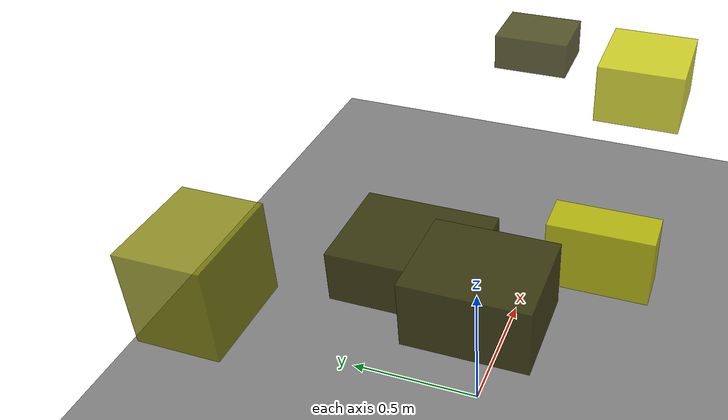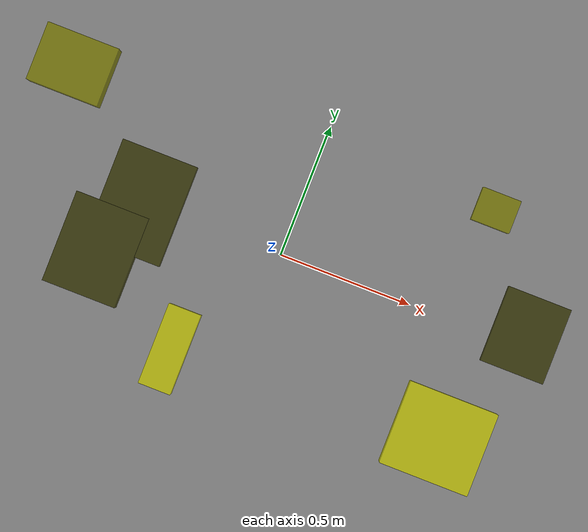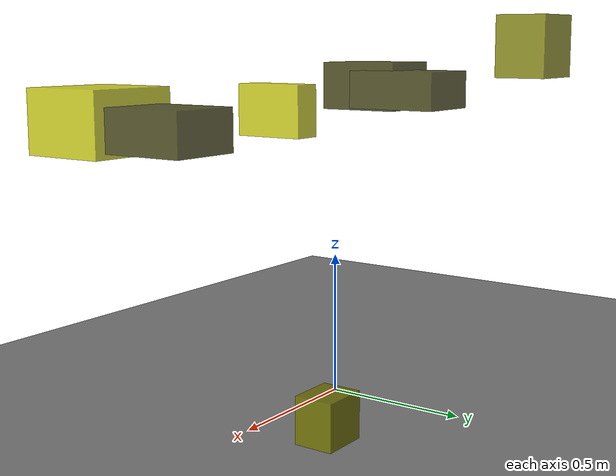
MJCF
<?xml version="1.0"?>
<mujoco model="obstacle_scene">
  <compiler angle="radian" coordinate="local"/>
  <option timestep="0.001" gravity="0 0 -9.81"/>

  <asset>
    <material name="obstacle_mat" rgba="0.8 0.8 0.0 0.8"/>
    <material name="ground_mat" rgba="0.5 0.5 0.5 1"/>
  </asset>

  <worldbody>
    <!-- Ground plane -->
    <geom name="ground" type="plane" size="3 3 0.1" material="ground_mat"/>

    <!-- Obstacles -->
    <body name="obstacle_0" pos="-0.505989 -0.007060 1.069884">
      <geom name="obs_0" type="box" size="0.136101 0.181710 0.072175" rgba="0.2 0.2 0.0 0.8"/>
    </body>
    <body name="obstacle_1" pos="-0.883204 0.345778 1.235800">
      <geom name="obs_1" type="box" size="0.128234 0.103437 0.123108" rgba="0.5 0.5 0.0 0.8"/>
    </body>
    <body name="obstacle_2" pos="0.736613 -0.390583 1.010870">
      <geom name="obs_2" type="box" size="0.160739 0.149110 0.105061" rgba="0.8 0.8 0.0 0.8"/>
    </body>
    <body name="obstacle_3" pos="0.887743 0.048127 1.011326">
      <geom name="obs_3" type="box" size="0.113916 0.136482 0.065178" rgba="0.2 0.2 0.0 0.8"/>
    </body>
    <body name="obstacle_4" pos="0.664757 0.430720 0.187049">
      <geom name="obs_4" type="box" size="0.072801 0.061969 0.071745" rgba="0.5 0.5 0.0 0.8"/>
    </body>
    <body name="obstacle_5" pos="-0.234904 -0.439880 0.988430">
      <geom name="obs_5" type="box" size="0.058801 0.145606 0.102366" rgba="0.8 0.8 0.0 0.8"/>
    </body>
    <body name="obstacle_6" pos="-0.591819 -0.211583 1.078120">
      <geom name="obs_6" type="box" size="0.132038 0.163079 0.093971" rgba="0.2 0.2 0.0 0.8"/>
    </body>
  </worldbody>
</mujoco>
